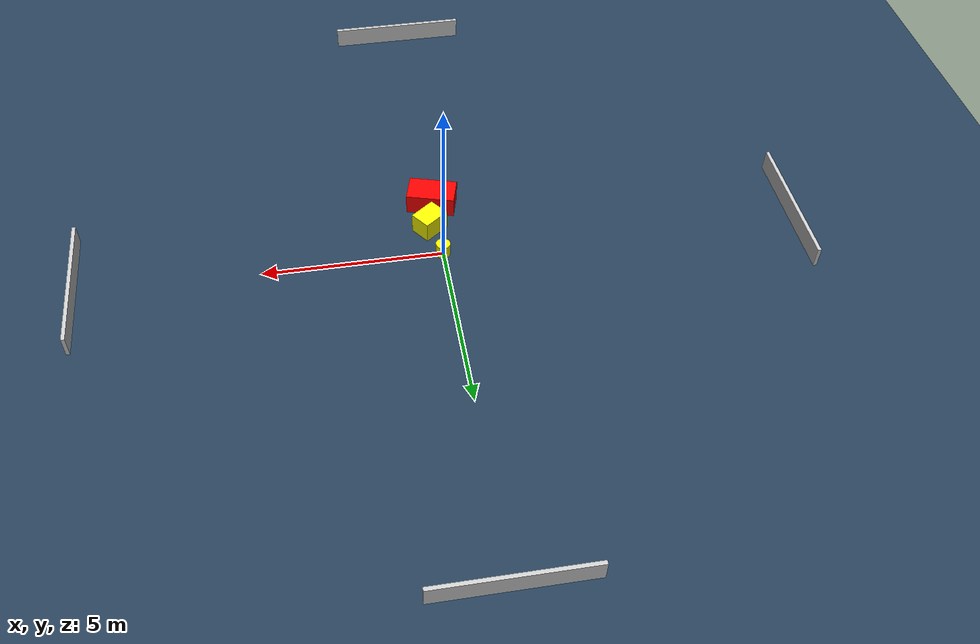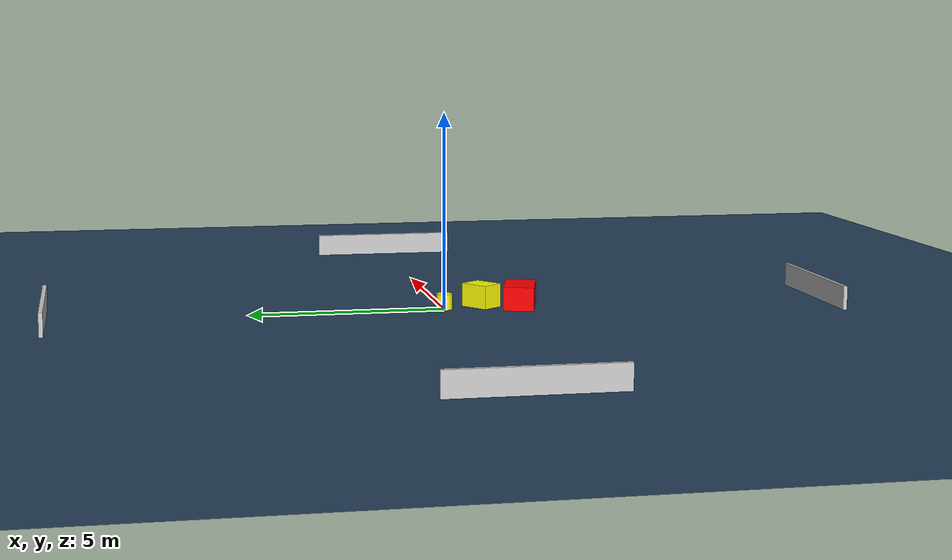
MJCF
<?xml version="1.0" ?>
<mujoco model="generated_environment">
  <option timestep="0.01" integrator="RK4" cone="elliptic"/>
  <default>
    <geom density="1"/>
  </default>
  <asset>
    <texture builtin="gradient" height="3072" name="skybox" rgb1="0.3 0.5 0.7" rgb2="0 0 0" type="skybox" width="512"/>
    <texture builtin="checker" height="300" name="groundplane" rgb1="0.2 0.3 0.4" rgb2="0.1 0.2 0.3" type="2d" width="300"/>
    <material name="groundplane" reflectance="0.2" texrepeat="5 5" texture="groundplane"/>
  </asset>
  <worldbody>
    <light dir="0 0 -1" directional="true" pos="0 0 1.5"/>
    <geom condim="3" friction="0.5 0.005 0.001" material="groundplane" name="floor" pos="0 0 0" size="0 0 0.05" type="plane"/>
    <body name="walls">
      <geom name="wall_1" condim="4" pos="-10.0 0.0 0.3" rgba="0.800000011920929 0.800000011920929 0.800000011920929 1.0" size="0.05 2.0 0.3" type="box"/>
      <geom name="wall_2" condim="4" pos="10.0 0.0 0.3" rgba="0.800000011920929 0.800000011920929 0.800000011920929 1.0" size="0.05 2.0 0.3" type="box"/>
      <geom name="wall_3" condim="4" pos="0.0 -10.0 0.3" rgba="0.800000011920929 0.800000011920929 0.800000011920929 1.0" size="2.0 0.05 0.3" type="box"/>
      <geom name="wall_4" condim="4" pos="0.0 10.0 0.3" rgba="0.800000011920929 0.800000011920929 0.800000011920929 1.0" size="2.0 0.05 0.3" type="box"/>
    </body>
    <body name="robot">
      <joint name="joint_x" type="slide" pos="0 0 0" axis="1 0 0"/>
      <joint name="joint_y" type="slide" pos="0 0 0" axis="0 1 0"/>
      <geom name="robot" type="cylinder" pos="0.0 0.0 0.2" size="0.2 0.2 0.0" mass="5.0" friction="1.0 0.005 0.0001" condim="4" rgba="1.0 1.0 0.0 1.0"/>
    </body>
    <body name="obstacle_1_movable">
      <geom name="obstacle_1_movable" condim="4" pos="0.2265029545413983 -1.0118999738691254 0.3" euler="0 0 126.77136361509824" friction="0.0 0.005 0.001" rgba="1.0 1.0 0.0 1.0" size="0.29987465397594604 0.3885014550474942 0.3" type="box" mass="0.1"/>
      <joint type="free"/>
    </body>
    <body name="obstacle_2_static">
      <geom name="obstacle_2_static" condim="4" pos="0.02359223771394542 -1.9726880710033374 0.3" euler="0 0 74.12700464681507" friction="0.0 0.005 0.001" rgba="1.0 0.0 0.0 1.0" size="0.392671605375897 0.6779182142712508 0.3" type="box"/>
    </body>
  </worldbody>
  <actuator>
    <motor name="actuator_x" joint="joint_x" gear="1" ctrlrange="-1 1"/>
    <motor name="actuator_y" joint="joint_y" gear="1" ctrlrange="-1 1"/>
  </actuator>
</mujoco>
